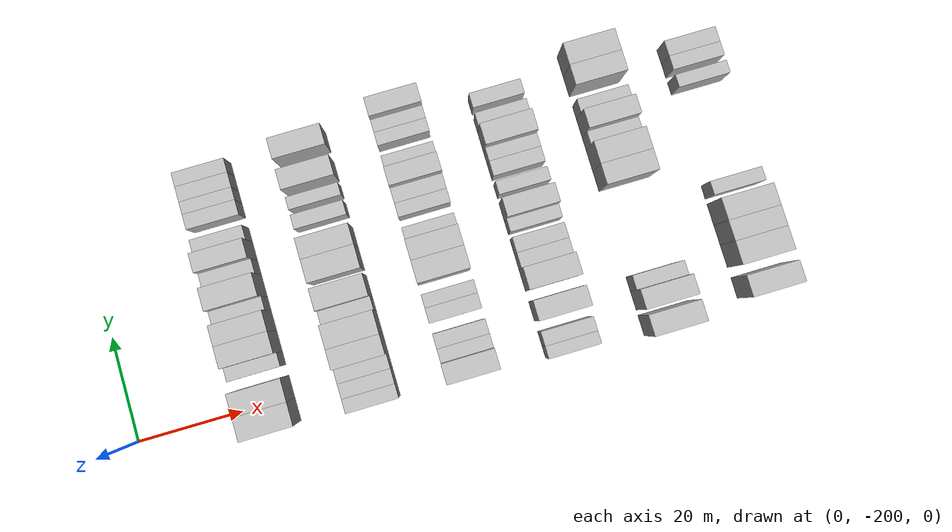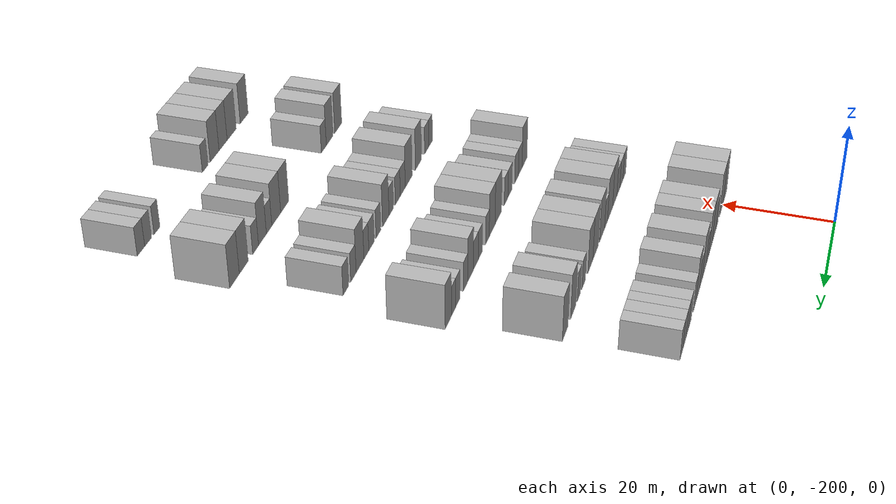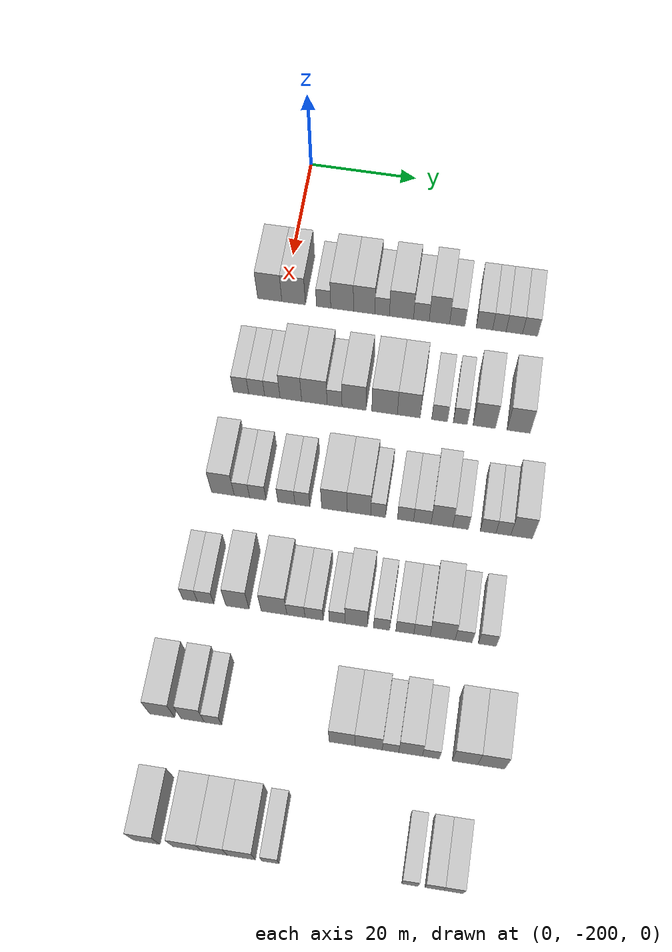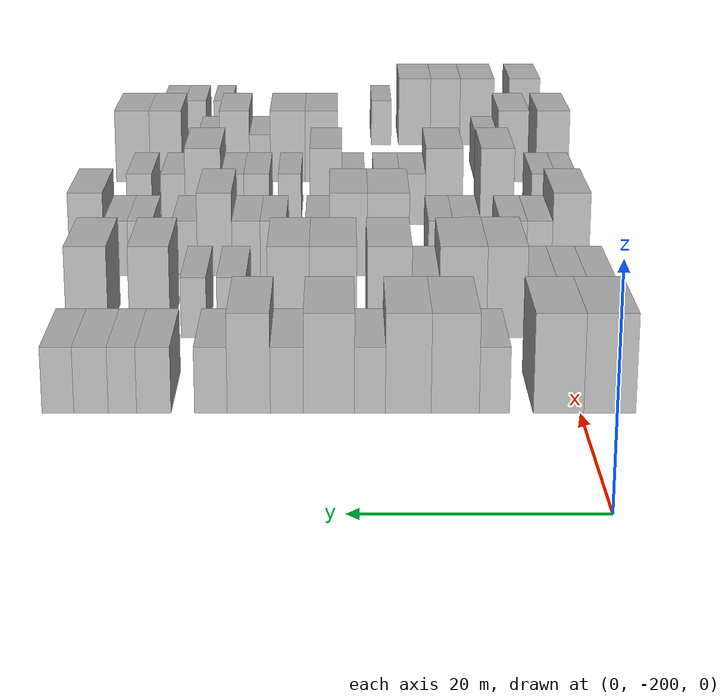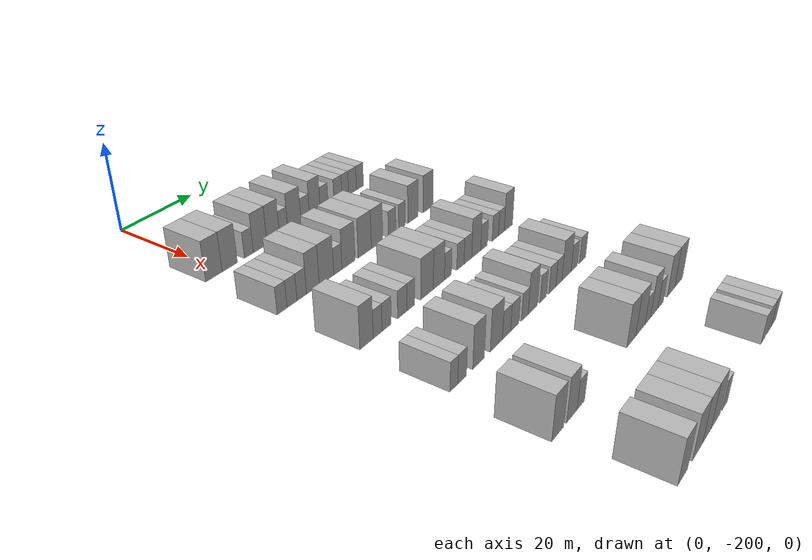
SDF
<sdf version="1.6">
 <world name="default">
  <model name="building_39">
   <static>1</static>
   <pose>25.0000 -202.5012 0 0.000000 0.000000 0.000000</pose>
   <link name="link">
    <pose>0 0 4.50 0 0 0</pose>
    <collision name="collision"><geometry><box><size>10.0000 4.4254 9.0000</size></box></geometry></collision>
    <visual name="visual">
     <cast_shadows>0</cast_shadows>
     <geometry><box><size>10.0000 4.4254 9.0000</size></box></geometry>
     <material>
      <script>
       <uri>model://HANNAS_wall/materials/scripts</uri>
       <uri>model://HANNAS_wall/materials/textures</uri>
       <name>vrc/HANNAS_wall</name>
      </script>
     </material>
    </visual>
   </link>
  </model>
  <model name="building_40">
   <static>1</static>
   <pose>25.0000 -198.1406 0 0.000000 0.000000 0.000000</pose>
   <link name="link">
    <pose>0 0 4.50 0 0 0</pose>
    <collision name="collision"><geometry><box><size>10.0000 4.2957 9.0000</size></box></geometry></collision>
    <visual name="visual">
     <cast_shadows>0</cast_shadows>
     <geometry><box><size>10.0000 4.2957 9.0000</size></box></geometry>
     <material>
      <script>
       <uri>model://HANNAS_wall/materials/scripts</uri>
       <uri>model://HANNAS_wall/materials/textures</uri>
       <name>vrc/HANNAS_wall</name>
      </script>
     </material>
    </visual>
   </link>
  </model>
  <model name="building_41">
   <static>1</static>
   <pose>25.0000 -192.6951 0 0.000000 0.000000 0.000000</pose>
   <link name="link">
    <pose>0 0 3.00 0 0 0</pose>
    <collision name="collision"><geometry><box><size>10.0000 2.5954 6.0000</size></box></geometry></collision>
    <visual name="visual">
     <cast_shadows>0</cast_shadows>
     <geometry><box><size>10.0000 2.5954 6.0000</size></box></geometry>
     <material>
      <script>
       <uri>model://HANNAS_wall/materials/scripts</uri>
       <uri>model://HANNAS_wall/materials/textures</uri>
       <name>vrc/HANNAS_wall</name>
      </script>
     </material>
    </visual>
   </link>
  </model>
  <model name="building_42">
   <static>1</static>
   <pose>25.0000 -189.3510 0 0.000000 0.000000 0.000000</pose>
   <link name="link">
    <pose>0 0 4.50 0 0 0</pose>
    <collision name="collision"><geometry><box><size>10.0000 4.0927 9.0000</size></box></geometry></collision>
    <visual name="visual">
     <cast_shadows>0</cast_shadows>
     <geometry><box><size>10.0000 4.0927 9.0000</size></box></geometry>
     <material>
      <script>
       <uri>model://HANNAS_wall/materials/scripts</uri>
       <uri>model://HANNAS_wall/materials/textures</uri>
       <name>vrc/HANNAS_wall</name>
      </script>
     </material>
    </visual>
   </link>
  </model>
  <model name="building_43">
   <static>1</static>
   <pose>25.0000 -185.3613 0 0.000000 0.000000 0.000000</pose>
   <link name="link">
    <pose>0 0 4.50 0 0 0</pose>
    <collision name="collision"><geometry><box><size>10.0000 3.8867 9.0000</size></box></geometry></collision>
    <visual name="visual">
     <cast_shadows>0</cast_shadows>
     <geometry><box><size>10.0000 3.8867 9.0000</size></box></geometry>
     <material>
      <script>
       <uri>model://HANNAS_wall/materials/scripts</uri>
       <uri>model://HANNAS_wall/materials/textures</uri>
       <name>vrc/HANNAS_wall</name>
      </script>
     </material>
    </visual>
   </link>
  </model>
  <model name="building_44">
   <static>1</static>
   <pose>25.0000 -182.1050 0 0.000000 0.000000 0.000000</pose>
   <link name="link">
    <pose>0 0 3.00 0 0 0</pose>
    <collision name="collision"><geometry><box><size>10.0000 2.6259 6.0000</size></box></geometry></collision>
    <visual name="visual">
     <cast_shadows>0</cast_shadows>
     <geometry><box><size>10.0000 2.6259 6.0000</size></box></geometry>
     <material>
      <script>
       <uri>model://HANNAS_wall/materials/scripts</uri>
       <uri>model://HANNAS_wall/materials/textures</uri>
       <name>vrc/HANNAS_wall</name>
      </script>
     </material>
    </visual>
   </link>
  </model>
  <model name="building_45">
   <static>1</static>
   <pose>25.0000 -178.6218 0 0.000000 0.000000 0.000000</pose>
   <link name="link">
    <pose>0 0 4.50 0 0 0</pose>
    <collision name="collision"><geometry><box><size>10.0000 4.3404 9.0000</size></box></geometry></collision>
    <visual name="visual">
     <cast_shadows>0</cast_shadows>
     <geometry><box><size>10.0000 4.3404 9.0000</size></box></geometry>
     <material>
      <script>
       <uri>model://HANNAS_wall/materials/scripts</uri>
       <uri>model://HANNAS_wall/materials/textures</uri>
       <name>vrc/HANNAS_wall</name>
      </script>
     </material>
    </visual>
   </link>
  </model>
  <model name="building_46">
   <static>1</static>
   <pose>25.0000 -175.0404 0 0.000000 0.000000 0.000000</pose>
   <link name="link">
    <pose>0 0 3.00 0 0 0</pose>
    <collision name="collision"><geometry><box><size>10.0000 2.8225 6.0000</size></box></geometry></collision>
    <visual name="visual">
     <cast_shadows>0</cast_shadows>
     <geometry><box><size>10.0000 2.8225 6.0000</size></box></geometry>
     <material>
      <script>
       <uri>model://HANNAS_wall/materials/scripts</uri>
       <uri>model://HANNAS_wall/materials/textures</uri>
       <name>vrc/HANNAS_wall</name>
      </script>
     </material>
    </visual>
   </link>
  </model>
  <model name="building_47">
   <static>1</static>
   <pose>25.0000 -171.7999 0 0.000000 0.000000 0.000000</pose>
   <link name="link">
    <pose>0 0 4.50 0 0 0</pose>
    <collision name="collision"><geometry><box><size>10.0000 3.6585 9.0000</size></box></geometry></collision>
    <visual name="visual">
     <cast_shadows>0</cast_shadows>
     <geometry><box><size>10.0000 3.6585 9.0000</size></box></geometry>
     <material>
      <script>
       <uri>model://HANNAS_wall/materials/scripts</uri>
       <uri>model://HANNAS_wall/materials/textures</uri>
       <name>vrc/HANNAS_wall</name>
      </script>
     </material>
    </visual>
   </link>
  </model>
  <model name="building_48">
   <static>1</static>
   <pose>25.0000 -168.5808 0 0.000000 0.000000 0.000000</pose>
   <link name="link">
    <pose>0 0 3.00 0 0 0</pose>
    <collision name="collision"><geometry><box><size>10.0000 2.7797 6.0000</size></box></geometry></collision>
    <visual name="visual">
     <cast_shadows>0</cast_shadows>
     <geometry><box><size>10.0000 2.7797 6.0000</size></box></geometry>
     <material>
      <script>
       <uri>model://HANNAS_wall/materials/scripts</uri>
       <uri>model://HANNAS_wall/materials/textures</uri>
       <name>vrc/HANNAS_wall</name>
      </script>
     </material>
    </visual>
   </link>
  </model>
  <model name="building_49">
   <static>1</static>
   <pose>25.0000 -163.7289 0 0.000000 0.000000 0.000000</pose>
   <link name="link">
    <pose>0 0 3.00 0 0 0</pose>
    <collision name="collision"><geometry><box><size>10.0000 2.9242 6.0000</size></box></geometry></collision>
    <visual name="visual">
     <cast_shadows>0</cast_shadows>
     <geometry><box><size>10.0000 2.9242 6.0000</size></box></geometry>
     <material>
      <script>
       <uri>model://HANNAS_wall/materials/scripts</uri>
       <uri>model://HANNAS_wall/materials/textures</uri>
       <name>vrc/HANNAS_wall</name>
      </script>
     </material>
    </visual>
   </link>
  </model>
  <model name="building_50">
   <static>1</static>
   <pose>25.0000 -161.0597 0 0.000000 0.000000 0.000000</pose>
   <link name="link">
    <pose>0 0 3.00 0 0 0</pose>
    <collision name="collision"><geometry><box><size>10.0000 2.4142 6.0000</size></box></geometry></collision>
    <visual name="visual">
     <cast_shadows>0</cast_shadows>
     <geometry><box><size>10.0000 2.4142 6.0000</size></box></geometry>
     <material>
      <script>
       <uri>model://HANNAS_wall/materials/scripts</uri>
       <uri>model://HANNAS_wall/materials/textures</uri>
       <name>vrc/HANNAS_wall</name>
      </script>
     </material>
    </visual>
   </link>
  </model>
  <model name="building_51">
   <static>1</static>
   <pose>25.0000 -158.3881 0 0.000000 0.000000 0.000000</pose>
   <link name="link">
    <pose>0 0 3.00 0 0 0</pose>
    <collision name="collision"><geometry><box><size>10.0000 2.9291 6.0000</size></box></geometry></collision>
    <visual name="visual">
     <cast_shadows>0</cast_shadows>
     <geometry><box><size>10.0000 2.9291 6.0000</size></box></geometry>
     <material>
      <script>
       <uri>model://HANNAS_wall/materials/scripts</uri>
       <uri>model://HANNAS_wall/materials/textures</uri>
       <name>vrc/HANNAS_wall</name>
      </script>
     </material>
    </visual>
   </link>
  </model>
  <model name="building_52">
   <static>1</static>
   <pose>25.0000 -155.5649 0 0.000000 0.000000 0.000000</pose>
   <link name="link">
    <pose>0 0 3.00 0 0 0</pose>
    <collision name="collision"><geometry><box><size>10.0000 2.7174 6.0000</size></box></geometry></collision>
    <visual name="visual">
     <cast_shadows>0</cast_shadows>
     <geometry><box><size>10.0000 2.7174 6.0000</size></box></geometry>
     <material>
      <script>
       <uri>model://HANNAS_wall/materials/scripts</uri>
       <uri>model://HANNAS_wall/materials/textures</uri>
       <name>vrc/HANNAS_wall</name>
      </script>
     </material>
    </visual>
   </link>
  </model>
  <model name="building_205">
   <static>1</static>
   <pose>44.0000 -204.1090 0 0.000000 0.000000 0.000000</pose>
   <link name="link">
    <pose>0 0 3.00 0 0 0</pose>
    <collision name="collision"><geometry><box><size>10.0000 2.7121 6.0000</size></box></geometry></collision>
    <visual name="visual">
     <cast_shadows>0</cast_shadows>
     <geometry><box><size>10.0000 2.7121 6.0000</size></box></geometry>
     <material>
      <script>
       <uri>model://HANNAS_wall/materials/scripts</uri>
       <uri>model://HANNAS_wall/materials/textures</uri>
       <name>vrc/HANNAS_wall</name>
      </script>
     </material>
    </visual>
   </link>
  </model>
  <model name="building_206">
   <static>1</static>
   <pose>44.0000 -201.3451 0 0.000000 0.000000 0.000000</pose>
   <link name="link">
    <pose>0 0 3.00 0 0 0</pose>
    <collision name="collision"><geometry><box><size>10.0000 2.8157 6.0000</size></box></geometry></collision>
    <visual name="visual">
     <cast_shadows>0</cast_shadows>
     <geometry><box><size>10.0000 2.8157 6.0000</size></box></geometry>
     <material>
      <script>
       <uri>model://HANNAS_wall/materials/scripts</uri>
       <uri>model://HANNAS_wall/materials/textures</uri>
       <name>vrc/HANNAS_wall</name>
      </script>
     </material>
    </visual>
   </link>
  </model>
  <model name="building_207">
   <static>1</static>
   <pose>44.0000 -198.5824 0 0.000000 0.000000 0.000000</pose>
   <link name="link">
    <pose>0 0 3.00 0 0 0</pose>
    <collision name="collision"><geometry><box><size>10.0000 2.7096 6.0000</size></box></geometry></collision>
    <visual name="visual">
     <cast_shadows>0</cast_shadows>
     <geometry><box><size>10.0000 2.7096 6.0000</size></box></geometry>
     <material>
      <script>
       <uri>model://HANNAS_wall/materials/scripts</uri>
       <uri>model://HANNAS_wall/materials/textures</uri>
       <name>vrc/HANNAS_wall</name>
      </script>
     </material>
    </visual>
   </link>
  </model>
  <model name="building_208">
   <static>1</static>
   <pose>44.0000 -195.3236 0 0.000000 0.000000 0.000000</pose>
   <link name="link">
    <pose>0 0 4.50 0 0 0</pose>
    <collision name="collision"><geometry><box><size>10.0000 3.8080 9.0000</size></box></geometry></collision>
    <visual name="visual">
     <cast_shadows>0</cast_shadows>
     <geometry><box><size>10.0000 3.8080 9.0000</size></box></geometry>
     <material>
      <script>
       <uri>model://HANNAS_wall/materials/scripts</uri>
       <uri>model://HANNAS_wall/materials/textures</uri>
       <name>vrc/HANNAS_wall</name>
      </script>
     </material>
    </visual>
   </link>
  </model>
  <model name="building_209">
   <static>1</static>
   <pose>44.0000 -191.1843 0 0.000000 0.000000 0.000000</pose>
   <link name="link">
    <pose>0 0 4.50 0 0 0</pose>
    <collision name="collision"><geometry><box><size>10.0000 4.4705 9.0000</size></box></geometry></collision>
    <visual name="visual">
     <cast_shadows>0</cast_shadows>
     <geometry><box><size>10.0000 4.4705 9.0000</size></box></geometry>
     <material>
      <script>
       <uri>model://HANNAS_wall/materials/scripts</uri>
       <uri>model://HANNAS_wall/materials/textures</uri>
       <name>vrc/HANNAS_wall</name>
      </script>
     </material>
    </visual>
   </link>
  </model>
  <model name="building_210">
   <static>1</static>
   <pose>44.0000 -187.6469 0 0.000000 0.000000 0.000000</pose>
   <link name="link">
    <pose>0 0 3.00 0 0 0</pose>
    <collision name="collision"><geometry><box><size>10.0000 2.6042 6.0000</size></box></geometry></collision>
    <visual name="visual">
     <cast_shadows>0</cast_shadows>
     <geometry><box><size>10.0000 2.6042 6.0000</size></box></geometry>
     <material>
      <script>
       <uri>model://HANNAS_wall/materials/scripts</uri>
       <uri>model://HANNAS_wall/materials/textures</uri>
       <name>vrc/HANNAS_wall</name>
      </script>
     </material>
    </visual>
   </link>
  </model>
  <model name="building_211">
   <static>1</static>
   <pose>44.0000 -184.2383 0 0.000000 0.000000 0.000000</pose>
   <link name="link">
    <pose>0 0 4.50 0 0 0</pose>
    <collision name="collision"><geometry><box><size>10.0000 4.2131 9.0000</size></box></geometry></collision>
    <visual name="visual">
     <cast_shadows>0</cast_shadows>
     <geometry><box><size>10.0000 4.2131 9.0000</size></box></geometry>
     <material>
      <script>
       <uri>model://HANNAS_wall/materials/scripts</uri>
       <uri>model://HANNAS_wall/materials/textures</uri>
       <name>vrc/HANNAS_wall</name>
      </script>
     </material>
    </visual>
   </link>
  </model>
  <model name="building_212">
   <static>1</static>
   <pose>44.0000 -178.9021 0 0.000000 0.000000 0.000000</pose>
   <link name="link">
    <pose>0 0 4.50 0 0 0</pose>
    <collision name="collision"><geometry><box><size>10.0000 4.4593 9.0000</size></box></geometry></collision>
    <visual name="visual">
     <cast_shadows>0</cast_shadows>
     <geometry><box><size>10.0000 4.4593 9.0000</size></box></geometry>
     <material>
      <script>
       <uri>model://HANNAS_wall/materials/scripts</uri>
       <uri>model://HANNAS_wall/materials/textures</uri>
       <name>vrc/HANNAS_wall</name>
      </script>
     </material>
    </visual>
   </link>
  </model>
  <model name="building_213">
   <static>1</static>
   <pose>44.0000 -174.6859 0 0.000000 0.000000 0.000000</pose>
   <link name="link">
    <pose>0 0 4.50 0 0 0</pose>
    <collision name="collision"><geometry><box><size>10.0000 3.9730 9.0000</size></box></geometry></collision>
    <visual name="visual">
     <cast_shadows>0</cast_shadows>
     <geometry><box><size>10.0000 3.9730 9.0000</size></box></geometry>
     <material>
      <script>
       <uri>model://HANNAS_wall/materials/scripts</uri>
       <uri>model://HANNAS_wall/materials/textures</uri>
       <name>vrc/HANNAS_wall</name>
      </script>
     </material>
    </visual>
   </link>
  </model>
  <model name="building_214">
   <static>1</static>
   <pose>44.0000 -169.3188 0 0.000000 0.000000 0.000000</pose>
   <link name="link">
    <pose>0 0 3.00 0 0 0</pose>
    <collision name="collision"><geometry><box><size>10.0000 2.7613 6.0000</size></box></geometry></collision>
    <visual name="visual">
     <cast_shadows>0</cast_shadows>
     <geometry><box><size>10.0000 2.7613 6.0000</size></box></geometry>
     <material>
      <script>
       <uri>model://HANNAS_wall/materials/scripts</uri>
       <uri>model://HANNAS_wall/materials/textures</uri>
       <name>vrc/HANNAS_wall</name>
      </script>
     </material>
    </visual>
   </link>
  </model>
  <model name="building_215">
   <static>1</static>
   <pose>44.0000 -165.7244 0 0.000000 0.000000 0.000000</pose>
   <link name="link">
    <pose>0 0 3.00 0 0 0</pose>
    <collision name="collision"><geometry><box><size>10.0000 2.4276 6.0000</size></box></geometry></collision>
    <visual name="visual">
     <cast_shadows>0</cast_shadows>
     <geometry><box><size>10.0000 2.4276 6.0000</size></box></geometry>
     <material>
      <script>
       <uri>model://HANNAS_wall/materials/scripts</uri>
       <uri>model://HANNAS_wall/materials/textures</uri>
       <name>vrc/HANNAS_wall</name>
      </script>
     </material>
    </visual>
   </link>
  </model>
  <model name="building_216">
   <static>1</static>
   <pose>44.0000 -161.5761 0 0.000000 0.000000 0.000000</pose>
   <link name="link">
    <pose>0 0 4.50 0 0 0</pose>
    <collision name="collision"><geometry><box><size>10.0000 3.8690 9.0000</size></box></geometry></collision>
    <visual name="visual">
     <cast_shadows>0</cast_shadows>
     <geometry><box><size>10.0000 3.8690 9.0000</size></box></geometry>
     <material>
      <script>
       <uri>model://HANNAS_wall/materials/scripts</uri>
       <uri>model://HANNAS_wall/materials/textures</uri>
       <name>vrc/HANNAS_wall</name>
      </script>
     </material>
    </visual>
   </link>
  </model>
  <model name="building_217">
   <static>1</static>
   <pose>44.0000 -155.6484 0 0.000000 0.000000 0.000000</pose>
   <link name="link">
    <pose>0 0 4.50 0 0 0</pose>
    <collision name="collision"><geometry><box><size>10.0000 3.9863 9.0000</size></box></geometry></collision>
    <visual name="visual">
     <cast_shadows>0</cast_shadows>
     <geometry><box><size>10.0000 3.9863 9.0000</size></box></geometry>
     <material>
      <script>
       <uri>model://HANNAS_wall/materials/scripts</uri>
       <uri>model://HANNAS_wall/materials/textures</uri>
       <name>vrc/HANNAS_wall</name>
      </script>
     </material>
    </visual>
   </link>
  </model>
  <model name="building_380">
   <static>1</static>
   <pose>63.0000 -203.5718 0 0.000000 0.000000 0.000000</pose>
   <link name="link">
    <pose>0 0 4.50 0 0 0</pose>
    <collision name="collision"><geometry><box><size>10.0000 3.8693 9.0000</size></box></geometry></collision>
    <visual name="visual">
     <cast_shadows>0</cast_shadows>
     <geometry><box><size>10.0000 3.8693 9.0000</size></box></geometry>
     <material>
      <script>
       <uri>model://HANNAS_wall/materials/scripts</uri>
       <uri>model://HANNAS_wall/materials/textures</uri>
       <name>vrc/HANNAS_wall</name>
      </script>
     </material>
    </visual>
   </link>
  </model>
  <model name="building_381">
   <static>1</static>
   <pose>63.0000 -200.3205 0 0.000000 0.000000 0.000000</pose>
   <link name="link">
    <pose>0 0 3.00 0 0 0</pose>
    <collision name="collision"><geometry><box><size>10.0000 2.6334 6.0000</size></box></geometry></collision>
    <visual name="visual">
     <cast_shadows>0</cast_shadows>
     <geometry><box><size>10.0000 2.6334 6.0000</size></box></geometry>
     <material>
      <script>
       <uri>model://HANNAS_wall/materials/scripts</uri>
       <uri>model://HANNAS_wall/materials/textures</uri>
       <name>vrc/HANNAS_wall</name>
      </script>
     </material>
    </visual>
   </link>
  </model>
  <model name="building_382">
   <static>1</static>
   <pose>63.0000 -197.6042 0 0.000000 0.000000 0.000000</pose>
   <link name="link">
    <pose>0 0 3.00 0 0 0</pose>
    <collision name="collision"><geometry><box><size>10.0000 2.7992 6.0000</size></box></geometry></collision>
    <visual name="visual">
     <cast_shadows>0</cast_shadows>
     <geometry><box><size>10.0000 2.7992 6.0000</size></box></geometry>
     <material>
      <script>
       <uri>model://HANNAS_wall/materials/scripts</uri>
       <uri>model://HANNAS_wall/materials/textures</uri>
       <name>vrc/HANNAS_wall</name>
      </script>
     </material>
    </visual>
   </link>
  </model>
  <model name="building_383">
   <static>1</static>
   <pose>63.0000 -192.7460 0 0.000000 0.000000 0.000000</pose>
   <link name="link">
    <pose>0 0 3.00 0 0 0</pose>
    <collision name="collision"><geometry><box><size>10.0000 2.9170 6.0000</size></box></geometry></collision>
    <visual name="visual">
     <cast_shadows>0</cast_shadows>
     <geometry><box><size>10.0000 2.9170 6.0000</size></box></geometry>
     <material>
      <script>
       <uri>model://HANNAS_wall/materials/scripts</uri>
       <uri>model://HANNAS_wall/materials/textures</uri>
       <name>vrc/HANNAS_wall</name>
      </script>
     </material>
    </visual>
   </link>
  </model>
  <model name="building_384">
   <static>1</static>
   <pose>63.0000 -190.0220 0 0.000000 0.000000 0.000000</pose>
   <link name="link">
    <pose>0 0 3.00 0 0 0</pose>
    <collision name="collision"><geometry><box><size>10.0000 2.5311 6.0000</size></box></geometry></collision>
    <visual name="visual">
     <cast_shadows>0</cast_shadows>
     <geometry><box><size>10.0000 2.5311 6.0000</size></box></geometry>
     <material>
      <script>
       <uri>model://HANNAS_wall/materials/scripts</uri>
       <uri>model://HANNAS_wall/materials/textures</uri>
       <name>vrc/HANNAS_wall</name>
      </script>
     </material>
    </visual>
   </link>
  </model>
  <model name="building_385">
   <static>1</static>
   <pose>63.0000 -184.5924 0 0.000000 0.000000 0.000000</pose>
   <link name="link">
    <pose>0 0 4.50 0 0 0</pose>
    <collision name="collision"><geometry><box><size>10.0000 4.3280 9.0000</size></box></geometry></collision>
    <visual name="visual">
     <cast_shadows>0</cast_shadows>
     <geometry><box><size>10.0000 4.3280 9.0000</size></box></geometry>
     <material>
      <script>
       <uri>model://HANNAS_wall/materials/scripts</uri>
       <uri>model://HANNAS_wall/materials/textures</uri>
       <name>vrc/HANNAS_wall</name>
      </script>
     </material>
    </visual>
   </link>
  </model>
  <model name="building_386">
   <static>1</static>
   <pose>63.0000 -180.4423 0 0.000000 0.000000 0.000000</pose>
   <link name="link">
    <pose>0 0 4.50 0 0 0</pose>
    <collision name="collision"><geometry><box><size>10.0000 3.9723 9.0000</size></box></geometry></collision>
    <visual name="visual">
     <cast_shadows>0</cast_shadows>
     <geometry><box><size>10.0000 3.9723 9.0000</size></box></geometry>
     <material>
      <script>
       <uri>model://HANNAS_wall/materials/scripts</uri>
       <uri>model://HANNAS_wall/materials/textures</uri>
       <name>vrc/HANNAS_wall</name>
      </script>
     </material>
    </visual>
   </link>
  </model>
  <model name="building_387">
   <static>1</static>
   <pose>63.0000 -177.2137 0 0.000000 0.000000 0.000000</pose>
   <link name="link">
    <pose>0 0 3.00 0 0 0</pose>
    <collision name="collision"><geometry><box><size>10.0000 2.4849 6.0000</size></box></geometry></collision>
    <visual name="visual">
     <cast_shadows>0</cast_shadows>
     <geometry><box><size>10.0000 2.4849 6.0000</size></box></geometry>
     <material>
      <script>
       <uri>model://HANNAS_wall/materials/scripts</uri>
       <uri>model://HANNAS_wall/materials/textures</uri>
       <name>vrc/HANNAS_wall</name>
      </script>
     </material>
    </visual>
   </link>
  </model>
  <model name="building_388">
   <static>1</static>
   <pose>63.0000 -172.6171 0 0.000000 0.000000 0.000000</pose>
   <link name="link">
    <pose>0 0 3.00 0 0 0</pose>
    <collision name="collision"><geometry><box><size>10.0000 2.7084 6.0000</size></box></geometry></collision>
    <visual name="visual">
     <cast_shadows>0</cast_shadows>
     <geometry><box><size>10.0000 2.7084 6.0000</size></box></geometry>
     <material>
      <script>
       <uri>model://HANNAS_wall/materials/scripts</uri>
       <uri>model://HANNAS_wall/materials/textures</uri>
       <name>vrc/HANNAS_wall</name>
      </script>
     </material>
    </visual>
   </link>
  </model>
  <model name="building_389">
   <static>1</static>
   <pose>63.0000 -169.7926 0 0.000000 0.000000 0.000000</pose>
   <link name="link">
    <pose>0 0 3.00 0 0 0</pose>
    <collision name="collision"><geometry><box><size>10.0000 2.9404 6.0000</size></box></geometry></collision>
    <visual name="visual">
     <cast_shadows>0</cast_shadows>
     <geometry><box><size>10.0000 2.9404 6.0000</size></box></geometry>
     <material>
      <script>
       <uri>model://HANNAS_wall/materials/scripts</uri>
       <uri>model://HANNAS_wall/materials/textures</uri>
       <name>vrc/HANNAS_wall</name>
      </script>
     </material>
    </visual>
   </link>
  </model>
  <model name="building_390">
   <static>1</static>
   <pose>63.0000 -166.5151 0 0.000000 0.000000 0.000000</pose>
   <link name="link">
    <pose>0 0 4.50 0 0 0</pose>
    <collision name="collision"><geometry><box><size>10.0000 3.6146 9.0000</size></box></geometry></collision>
    <visual name="visual">
     <cast_shadows>0</cast_shadows>
     <geometry><box><size>10.0000 3.6146 9.0000</size></box></geometry>
     <material>
      <script>
       <uri>model://HANNAS_wall/materials/scripts</uri>
       <uri>model://HANNAS_wall/materials/textures</uri>
       <name>vrc/HANNAS_wall</name>
      </script>
     </material>
    </visual>
   </link>
  </model>
  <model name="building_391">
   <static>1</static>
   <pose>63.0000 -163.3926 0 0.000000 0.000000 0.000000</pose>
   <link name="link">
    <pose>0 0 3.00 0 0 0</pose>
    <collision name="collision"><geometry><box><size>10.0000 2.6303 6.0000</size></box></geometry></collision>
    <visual name="visual">
     <cast_shadows>0</cast_shadows>
     <geometry><box><size>10.0000 2.6303 6.0000</size></box></geometry>
     <material>
      <script>
       <uri>model://HANNAS_wall/materials/scripts</uri>
       <uri>model://HANNAS_wall/materials/textures</uri>
       <name>vrc/HANNAS_wall</name>
      </script>
     </material>
    </visual>
   </link>
  </model>
  <model name="building_392">
   <static>1</static>
   <pose>63.0000 -158.7782 0 0.000000 0.000000 0.000000</pose>
   <link name="link">
    <pose>0 0 3.00 0 0 0</pose>
    <collision name="collision"><geometry><box><size>10.0000 2.5986 6.0000</size></box></geometry></collision>
    <visual name="visual">
     <cast_shadows>0</cast_shadows>
     <geometry><box><size>10.0000 2.5986 6.0000</size></box></geometry>
     <material>
      <script>
       <uri>model://HANNAS_wall/materials/scripts</uri>
       <uri>model://HANNAS_wall/materials/textures</uri>
       <name>vrc/HANNAS_wall</name>
      </script>
     </material>
    </visual>
   </link>
  </model>
  <model name="building_393">
   <static>1</static>
   <pose>63.0000 -156.2447 0 0.000000 0.000000 0.000000</pose>
   <link name="link">
    <pose>0 0 3.00 0 0 0</pose>
    <collision name="collision"><geometry><box><size>10.0000 2.4684 6.0000</size></box></geometry></collision>
    <visual name="visual">
     <cast_shadows>0</cast_shadows>
     <geometry><box><size>10.0000 2.4684 6.0000</size></box></geometry>
     <material>
      <script>
       <uri>model://HANNAS_wall/materials/scripts</uri>
       <uri>model://HANNAS_wall/materials/textures</uri>
       <name>vrc/HANNAS_wall</name>
      </script>
     </material>
    </visual>
   </link>
  </model>
  <model name="building_394">
   <static>1</static>
   <pose>63.0000 -153.1979 0 0.000000 0.000000 0.000000</pose>
   <link name="link">
    <pose>0 0 4.50 0 0 0</pose>
    <collision name="collision"><geometry><box><size>10.0000 3.6252 9.0000</size></box></geometry></collision>
    <visual name="visual">
     <cast_shadows>0</cast_shadows>
     <geometry><box><size>10.0000 3.6252 9.0000</size></box></geometry>
     <material>
      <script>
       <uri>model://HANNAS_wall/materials/scripts</uri>
       <uri>model://HANNAS_wall/materials/textures</uri>
       <name>vrc/HANNAS_wall</name>
      </script>
     </material>
    </visual>
   </link>
  </model>
  <model name="building_551">
   <static>1</static>
   <pose>82.0000 -205.2498 0 0.000000 0.000000 0.000000</pose>
   <link name="link">
    <pose>0 0 3.00 0 0 0</pose>
    <collision name="collision"><geometry><box><size>10.0000 2.4044 6.0000</size></box></geometry></collision>
    <visual name="visual">
     <cast_shadows>0</cast_shadows>
     <geometry><box><size>10.0000 2.4044 6.0000</size></box></geometry>
     <material>
      <script>
       <uri>model://HANNAS_wall/materials/scripts</uri>
       <uri>model://HANNAS_wall/materials/textures</uri>
       <name>vrc/HANNAS_wall</name>
      </script>
     </material>
    </visual>
   </link>
  </model>
  <model name="building_552">
   <static>1</static>
   <pose>82.0000 -202.6896 0 0.000000 0.000000 0.000000</pose>
   <link name="link">
    <pose>0 0 3.00 0 0 0</pose>
    <collision name="collision"><geometry><box><size>10.0000 2.7161 6.0000</size></box></geometry></collision>
    <visual name="visual">
     <cast_shadows>0</cast_shadows>
     <geometry><box><size>10.0000 2.7161 6.0000</size></box></geometry>
     <material>
      <script>
       <uri>model://HANNAS_wall/materials/scripts</uri>
       <uri>model://HANNAS_wall/materials/textures</uri>
       <name>vrc/HANNAS_wall</name>
      </script>
     </material>
    </visual>
   </link>
  </model>
  <model name="building_553">
   <static>1</static>
   <pose>82.0000 -197.4261 0 0.000000 0.000000 0.000000</pose>
   <link name="link">
    <pose>0 0 4.50 0 0 0</pose>
    <collision name="collision"><geometry><box><size>10.0000 3.8108 9.0000</size></box></geometry></collision>
    <visual name="visual">
     <cast_shadows>0</cast_shadows>
     <geometry><box><size>10.0000 3.8108 9.0000</size></box></geometry>
     <material>
      <script>
       <uri>model://HANNAS_wall/materials/scripts</uri>
       <uri>model://HANNAS_wall/materials/textures</uri>
       <name>vrc/HANNAS_wall</name>
      </script>
     </material>
    </visual>
   </link>
  </model>
  <model name="building_554">
   <static>1</static>
   <pose>82.0000 -191.4086 0 0.000000 0.000000 0.000000</pose>
   <link name="link">
    <pose>0 0 4.50 0 0 0</pose>
    <collision name="collision"><geometry><box><size>10.0000 4.2242 9.0000</size></box></geometry></collision>
    <visual name="visual">
     <cast_shadows>0</cast_shadows>
     <geometry><box><size>10.0000 4.2242 9.0000</size></box></geometry>
     <material>
      <script>
       <uri>model://HANNAS_wall/materials/scripts</uri>
       <uri>model://HANNAS_wall/materials/textures</uri>
       <name>vrc/HANNAS_wall</name>
      </script>
     </material>
    </visual>
   </link>
  </model>
  <model name="building_555">
   <static>1</static>
   <pose>82.0000 -187.8111 0 0.000000 0.000000 0.000000</pose>
   <link name="link">
    <pose>0 0 3.00 0 0 0</pose>
    <collision name="collision"><geometry><box><size>10.0000 2.9708 6.0000</size></box></geometry></collision>
    <visual name="visual">
     <cast_shadows>0</cast_shadows>
     <geometry><box><size>10.0000 2.9708 6.0000</size></box></geometry>
     <material>
      <script>
       <uri>model://HANNAS_wall/materials/scripts</uri>
       <uri>model://HANNAS_wall/materials/textures</uri>
       <name>vrc/HANNAS_wall</name>
      </script>
     </material>
    </visual>
   </link>
  </model>
  <model name="building_556">
   <static>1</static>
   <pose>82.0000 -184.8534 0 0.000000 0.000000 0.000000</pose>
   <link name="link">
    <pose>0 0 3.00 0 0 0</pose>
    <collision name="collision"><geometry><box><size>10.0000 2.9445 6.0000</size></box></geometry></collision>
    <visual name="visual">
     <cast_shadows>0</cast_shadows>
     <geometry><box><size>10.0000 2.9445 6.0000</size></box></geometry>
     <material>
      <script>
       <uri>model://HANNAS_wall/materials/scripts</uri>
       <uri>model://HANNAS_wall/materials/textures</uri>
       <name>vrc/HANNAS_wall</name>
      </script>
     </material>
    </visual>
   </link>
  </model>
  <model name="building_557">
   <static>1</static>
   <pose>82.0000 -181.0954 0 0.000000 0.000000 0.000000</pose>
   <link name="link">
    <pose>0 0 3.00 0 0 0</pose>
    <collision name="collision"><geometry><box><size>10.0000 2.5715 6.0000</size></box></geometry></collision>
    <visual name="visual">
     <cast_shadows>0</cast_shadows>
     <geometry><box><size>10.0000 2.5715 6.0000</size></box></geometry>
     <material>
      <script>
       <uri>model://HANNAS_wall/materials/scripts</uri>
       <uri>model://HANNAS_wall/materials/textures</uri>
       <name>vrc/HANNAS_wall</name>
      </script>
     </material>
    </visual>
   </link>
  </model>
  <model name="building_558">
   <static>1</static>
   <pose>82.0000 -177.9817 0 0.000000 0.000000 0.000000</pose>
   <link name="link">
    <pose>0 0 4.50 0 0 0</pose>
    <collision name="collision"><geometry><box><size>10.0000 3.6559 9.0000</size></box></geometry></collision>
    <visual name="visual">
     <cast_shadows>0</cast_shadows>
     <geometry><box><size>10.0000 3.6559 9.0000</size></box></geometry>
     <material>
      <script>
       <uri>model://HANNAS_wall/materials/scripts</uri>
       <uri>model://HANNAS_wall/materials/textures</uri>
       <name>vrc/HANNAS_wall</name>
      </script>
     </material>
    </visual>
   </link>
  </model>
  <model name="building_559">
   <static>1</static>
   <pose>82.0000 -173.8535 0 0.000000 0.000000 0.000000</pose>
   <link name="link">
    <pose>0 0 3.00 0 0 0</pose>
    <collision name="collision"><geometry><box><size>10.0000 2.6007 6.0000</size></box></geometry></collision>
    <visual name="visual">
     <cast_shadows>0</cast_shadows>
     <geometry><box><size>10.0000 2.6007 6.0000</size></box></geometry>
     <material>
      <script>
       <uri>model://HANNAS_wall/materials/scripts</uri>
       <uri>model://HANNAS_wall/materials/textures</uri>
       <name>vrc/HANNAS_wall</name>
      </script>
     </material>
    </visual>
   </link>
  </model>
  <model name="building_560">
   <static>1</static>
   <pose>82.0000 -170.0890 0 0.000000 0.000000 0.000000</pose>
   <link name="link">
    <pose>0 0 3.00 0 0 0</pose>
    <collision name="collision"><geometry><box><size>10.0000 2.9282 6.0000</size></box></geometry></collision>
    <visual name="visual">
     <cast_shadows>0</cast_shadows>
     <geometry><box><size>10.0000 2.9282 6.0000</size></box></geometry>
     <material>
      <script>
       <uri>model://HANNAS_wall/materials/scripts</uri>
       <uri>model://HANNAS_wall/materials/textures</uri>
       <name>vrc/HANNAS_wall</name>
      </script>
     </material>
    </visual>
   </link>
  </model>
  <model name="building_561">
   <static>1</static>
   <pose>82.0000 -167.3298 0 0.000000 0.000000 0.000000</pose>
   <link name="link">
    <pose>0 0 3.00 0 0 0</pose>
    <collision name="collision"><geometry><box><size>10.0000 2.5904 6.0000</size></box></geometry></collision>
    <visual name="visual">
     <cast_shadows>0</cast_shadows>
     <geometry><box><size>10.0000 2.5904 6.0000</size></box></geometry>
     <material>
      <script>
       <uri>model://HANNAS_wall/materials/scripts</uri>
       <uri>model://HANNAS_wall/materials/textures</uri>
       <name>vrc/HANNAS_wall</name>
      </script>
     </material>
    </visual>
   </link>
  </model>
  <model name="building_562">
   <static>1</static>
   <pose>82.0000 -163.9995 0 0.000000 0.000000 0.000000</pose>
   <link name="link">
    <pose>0 0 4.50 0 0 0</pose>
    <collision name="collision"><geometry><box><size>10.0000 4.0701 9.0000</size></box></geometry></collision>
    <visual name="visual">
     <cast_shadows>0</cast_shadows>
     <geometry><box><size>10.0000 4.0701 9.0000</size></box></geometry>
     <material>
      <script>
       <uri>model://HANNAS_wall/materials/scripts</uri>
       <uri>model://HANNAS_wall/materials/textures</uri>
       <name>vrc/HANNAS_wall</name>
      </script>
     </material>
    </visual>
   </link>
  </model>
  <model name="building_563">
   <static>1</static>
   <pose>82.0000 -160.5838 0 0.000000 0.000000 0.000000</pose>
   <link name="link">
    <pose>0 0 3.00 0 0 0</pose>
    <collision name="collision"><geometry><box><size>10.0000 2.7613 6.0000</size></box></geometry></collision>
    <visual name="visual">
     <cast_shadows>0</cast_shadows>
     <geometry><box><size>10.0000 2.7613 6.0000</size></box></geometry>
     <material>
      <script>
       <uri>model://HANNAS_wall/materials/scripts</uri>
       <uri>model://HANNAS_wall/materials/textures</uri>
       <name>vrc/HANNAS_wall</name>
      </script>
     </material>
    </visual>
   </link>
  </model>
  <model name="building_564">
   <static>1</static>
   <pose>82.0000 -156.7648 0 0.000000 0.000000 0.000000</pose>
   <link name="link">
    <pose>0 0 3.00 0 0 0</pose>
    <collision name="collision"><geometry><box><size>10.0000 2.8769 6.0000</size></box></geometry></collision>
    <visual name="visual">
     <cast_shadows>0</cast_shadows>
     <geometry><box><size>10.0000 2.8769 6.0000</size></box></geometry>
     <material>
      <script>
       <uri>model://HANNAS_wall/materials/scripts</uri>
       <uri>model://HANNAS_wall/materials/textures</uri>
       <name>vrc/HANNAS_wall</name>
      </script>
     </material>
    </visual>
   </link>
  </model>
  <model name="building_728">
   <static>1</static>
   <pose>101.0000 -205.7820 0 0.000000 0.000000 0.000000</pose>
   <link name="link">
    <pose>0 0 4.50 0 0 0</pose>
    <collision name="collision"><geometry><box><size>10.0000 4.0161 9.0000</size></box></geometry></collision>
    <visual name="visual">
     <cast_shadows>0</cast_shadows>
     <geometry><box><size>10.0000 4.0161 9.0000</size></box></geometry>
     <material>
      <script>
       <uri>model://HANNAS_wall/materials/scripts</uri>
       <uri>model://HANNAS_wall/materials/textures</uri>
       <name>vrc/HANNAS_wall</name>
      </script>
     </material>
    </visual>
   </link>
  </model>
  <model name="building_729">
   <static>1</static>
   <pose>101.0000 -200.8974 0 0.000000 0.000000 0.000000</pose>
   <link name="link">
    <pose>0 0 4.50 0 0 0</pose>
    <collision name="collision"><geometry><box><size>10.0000 3.7531 9.0000</size></box></geometry></collision>
    <visual name="visual">
     <cast_shadows>0</cast_shadows>
     <geometry><box><size>10.0000 3.7531 9.0000</size></box></geometry>
     <material>
      <script>
       <uri>model://HANNAS_wall/materials/scripts</uri>
       <uri>model://HANNAS_wall/materials/textures</uri>
       <name>vrc/HANNAS_wall</name>
      </script>
     </material>
    </visual>
   </link>
  </model>
  <model name="building_730">
   <static>1</static>
   <pose>101.0000 -197.6499 0 0.000000 0.000000 0.000000</pose>
   <link name="link">
    <pose>0 0 3.00 0 0 0</pose>
    <collision name="collision"><geometry><box><size>10.0000 2.7419 6.0000</size></box></geometry></collision>
    <visual name="visual">
     <cast_shadows>0</cast_shadows>
     <geometry><box><size>10.0000 2.7419 6.0000</size></box></geometry>
     <material>
      <script>
       <uri>model://HANNAS_wall/materials/scripts</uri>
       <uri>model://HANNAS_wall/materials/textures</uri>
       <name>vrc/HANNAS_wall</name>
      </script>
     </material>
    </visual>
   </link>
  </model>
  <model name="building_731">
   <static>1</static>
   <pose>101.0000 -177.2748 0 0.000000 0.000000 0.000000</pose>
   <link name="link">
    <pose>0 0 4.50 0 0 0</pose>
    <collision name="collision"><geometry><box><size>10.0000 4.0028 9.0000</size></box></geometry></collision>
    <visual name="visual">
     <cast_shadows>0</cast_shadows>
     <geometry><box><size>10.0000 4.0028 9.0000</size></box></geometry>
     <material>
      <script>
       <uri>model://HANNAS_wall/materials/scripts</uri>
       <uri>model://HANNAS_wall/materials/textures</uri>
       <name>vrc/HANNAS_wall</name>
      </script>
     </material>
    </visual>
   </link>
  </model>
  <model name="building_732">
   <static>1</static>
   <pose>101.0000 -173.1258 0 0.000000 0.000000 0.000000</pose>
   <link name="link">
    <pose>0 0 4.50 0 0 0</pose>
    <collision name="collision"><geometry><box><size>10.0000 4.2953 9.0000</size></box></geometry></collision>
    <visual name="visual">
     <cast_shadows>0</cast_shadows>
     <geometry><box><size>10.0000 4.2953 9.0000</size></box></geometry>
     <material>
      <script>
       <uri>model://HANNAS_wall/materials/scripts</uri>
       <uri>model://HANNAS_wall/materials/textures</uri>
       <name>vrc/HANNAS_wall</name>
      </script>
     </material>
    </visual>
   </link>
  </model>
  <model name="building_733">
   <static>1</static>
   <pose>101.0000 -169.6943 0 0.000000 0.000000 0.000000</pose>
   <link name="link">
    <pose>0 0 3.00 0 0 0</pose>
    <collision name="collision"><geometry><box><size>10.0000 2.5678 6.0000</size></box></geometry></collision>
    <visual name="visual">
     <cast_shadows>0</cast_shadows>
     <geometry><box><size>10.0000 2.5678 6.0000</size></box></geometry>
     <material>
      <script>
       <uri>model://HANNAS_wall/materials/scripts</uri>
       <uri>model://HANNAS_wall/materials/textures</uri>
       <name>vrc/HANNAS_wall</name>
      </script>
     </material>
    </visual>
   </link>
  </model>
  <model name="building_734">
   <static>1</static>
   <pose>101.0000 -166.5752 0 0.000000 0.000000 0.000000</pose>
   <link name="link">
    <pose>0 0 4.50 0 0 0</pose>
    <collision name="collision"><geometry><box><size>10.0000 3.6705 9.0000</size></box></geometry></collision>
    <visual name="visual">
     <cast_shadows>0</cast_shadows>
     <geometry><box><size>10.0000 3.6705 9.0000</size></box></geometry>
     <material>
      <script>
       <uri>model://HANNAS_wall/materials/scripts</uri>
       <uri>model://HANNAS_wall/materials/textures</uri>
       <name>vrc/HANNAS_wall</name>
      </script>
     </material>
    </visual>
   </link>
  </model>
  <model name="building_735">
   <static>1</static>
   <pose>101.0000 -163.4053 0 0.000000 0.000000 0.000000</pose>
   <link name="link">
    <pose>0 0 3.00 0 0 0</pose>
    <collision name="collision"><geometry><box><size>10.0000 2.6693 6.0000</size></box></geometry></collision>
    <visual name="visual">
     <cast_shadows>0</cast_shadows>
     <geometry><box><size>10.0000 2.6693 6.0000</size></box></geometry>
     <material>
      <script>
       <uri>model://HANNAS_wall/materials/scripts</uri>
       <uri>model://HANNAS_wall/materials/textures</uri>
       <name>vrc/HANNAS_wall</name>
      </script>
     </material>
    </visual>
   </link>
  </model>
  <model name="building_736">
   <static>1</static>
   <pose>101.0000 -158.0943 0 0.000000 0.000000 0.000000</pose>
   <link name="link">
    <pose>0 0 4.50 0 0 0</pose>
    <collision name="collision"><geometry><box><size>10.0000 3.9526 9.0000</size></box></geometry></collision>
    <visual name="visual">
     <cast_shadows>0</cast_shadows>
     <geometry><box><size>10.0000 3.9526 9.0000</size></box></geometry>
     <material>
      <script>
       <uri>model://HANNAS_wall/materials/scripts</uri>
       <uri>model://HANNAS_wall/materials/textures</uri>
       <name>vrc/HANNAS_wall</name>
      </script>
     </material>
    </visual>
   </link>
  </model>
  <model name="building_737">
   <static>1</static>
   <pose>101.0000 -154.0114 0 0.000000 0.000000 0.000000</pose>
   <link name="link">
    <pose>0 0 4.50 0 0 0</pose>
    <collision name="collision"><geometry><box><size>10.0000 4.2133 9.0000</size></box></geometry></collision>
    <visual name="visual">
     <cast_shadows>0</cast_shadows>
     <geometry><box><size>10.0000 4.2133 9.0000</size></box></geometry>
     <material>
      <script>
       <uri>model://HANNAS_wall/materials/scripts</uri>
       <uri>model://HANNAS_wall/materials/textures</uri>
       <name>vrc/HANNAS_wall</name>
      </script>
     </material>
    </visual>
   </link>
  </model>
  <model name="building_907">
   <static>1</static>
   <pose>120.0000 -204.0200 0 0.000000 0.000000 0.000000</pose>
   <link name="link">
    <pose>0 0 4.50 0 0 0</pose>
    <collision name="collision"><geometry><box><size>10.0000 4.0510 9.0000</size></box></geometry></collision>
    <visual name="visual">
     <cast_shadows>0</cast_shadows>
     <geometry><box><size>10.0000 4.0510 9.0000</size></box></geometry>
     <material>
      <script>
       <uri>model://HANNAS_wall/materials/scripts</uri>
       <uri>model://HANNAS_wall/materials/textures</uri>
       <name>vrc/HANNAS_wall</name>
      </script>
     </material>
    </visual>
   </link>
  </model>
  <model name="building_908">
   <static>1</static>
   <pose>120.0000 -197.7570 0 0.000000 0.000000 0.000000</pose>
   <link name="link">
    <pose>0 0 4.50 0 0 0</pose>
    <collision name="collision"><geometry><box><size>10.0000 4.4749 9.0000</size></box></geometry></collision>
    <visual name="visual">
     <cast_shadows>0</cast_shadows>
     <geometry><box><size>10.0000 4.4749 9.0000</size></box></geometry>
     <material>
      <script>
       <uri>model://HANNAS_wall/materials/scripts</uri>
       <uri>model://HANNAS_wall/materials/textures</uri>
       <name>vrc/HANNAS_wall</name>
      </script>
     </material>
    </visual>
   </link>
  </model>
  <model name="building_909">
   <static>1</static>
   <pose>120.0000 -193.5668 0 0.000000 0.000000 0.000000</pose>
   <link name="link">
    <pose>0 0 4.50 0 0 0</pose>
    <collision name="collision"><geometry><box><size>10.0000 3.9055 9.0000</size></box></geometry></collision>
    <visual name="visual">
     <cast_shadows>0</cast_shadows>
     <geometry><box><size>10.0000 3.9055 9.0000</size></box></geometry>
     <material>
      <script>
       <uri>model://HANNAS_wall/materials/scripts</uri>
       <uri>model://HANNAS_wall/materials/textures</uri>
       <name>vrc/HANNAS_wall</name>
      </script>
     </material>
    </visual>
   </link>
  </model>
  <model name="building_910">
   <static>1</static>
   <pose>120.0000 -189.5027 0 0.000000 0.000000 0.000000</pose>
   <link name="link">
    <pose>0 0 4.50 0 0 0</pose>
    <collision name="collision"><geometry><box><size>10.0000 4.2227 9.0000</size></box></geometry></collision>
    <visual name="visual">
     <cast_shadows>0</cast_shadows>
     <geometry><box><size>10.0000 4.2227 9.0000</size></box></geometry>
     <material>
      <script>
       <uri>model://HANNAS_wall/materials/scripts</uri>
       <uri>model://HANNAS_wall/materials/textures</uri>
       <name>vrc/HANNAS_wall</name>
      </script>
     </material>
    </visual>
   </link>
  </model>
  <model name="building_911">
   <static>1</static>
   <pose>120.0000 -185.0763 0 0.000000 0.000000 0.000000</pose>
   <link name="link">
    <pose>0 0 3.00 0 0 0</pose>
    <collision name="collision"><geometry><box><size>10.0000 2.6300 6.0000</size></box></geometry></collision>
    <visual name="visual">
     <cast_shadows>0</cast_shadows>
     <geometry><box><size>10.0000 2.6300 6.0000</size></box></geometry>
     <material>
      <script>
       <uri>model://HANNAS_wall/materials/scripts</uri>
       <uri>model://HANNAS_wall/materials/textures</uri>
       <name>vrc/HANNAS_wall</name>
      </script>
     </material>
    </visual>
   </link>
  </model>
  <model name="building_912">
   <static>1</static>
   <pose>120.0000 -164.0420 0 0.000000 0.000000 0.000000</pose>
   <link name="link">
    <pose>0 0 3.00 0 0 0</pose>
    <collision name="collision"><geometry><box><size>10.0000 2.4795 6.0000</size></box></geometry></collision>
    <visual name="visual">
     <cast_shadows>0</cast_shadows>
     <geometry><box><size>10.0000 2.4795 6.0000</size></box></geometry>
     <material>
      <script>
       <uri>model://HANNAS_wall/materials/scripts</uri>
       <uri>model://HANNAS_wall/materials/textures</uri>
       <name>vrc/HANNAS_wall</name>
      </script>
     </material>
    </visual>
   </link>
  </model>
  <model name="building_913">
   <static>1</static>
   <pose>120.0000 -160.4241 0 0.000000 0.000000 0.000000</pose>
   <link name="link">
    <pose>0 0 3.00 0 0 0</pose>
    <collision name="collision"><geometry><box><size>10.0000 2.7563 6.0000</size></box></geometry></collision>
    <visual name="visual">
     <cast_shadows>0</cast_shadows>
     <geometry><box><size>10.0000 2.7563 6.0000</size></box></geometry>
     <material>
      <script>
       <uri>model://HANNAS_wall/materials/scripts</uri>
       <uri>model://HANNAS_wall/materials/textures</uri>
       <name>vrc/HANNAS_wall</name>
      </script>
     </material>
    </visual>
   </link>
  </model>
  <model name="building_914">
   <static>1</static>
   <pose>120.0000 -157.5542 0 0.000000 0.000000 0.000000</pose>
   <link name="link">
    <pose>0 0 3.00 0 0 0</pose>
    <collision name="collision"><geometry><box><size>10.0000 2.9835 6.0000</size></box></geometry></collision>
    <visual name="visual">
     <cast_shadows>0</cast_shadows>
     <geometry><box><size>10.0000 2.9835 6.0000</size></box></geometry>
     <material>
      <script>
       <uri>model://HANNAS_wall/materials/scripts</uri>
       <uri>model://HANNAS_wall/materials/textures</uri>
       <name>vrc/HANNAS_wall</name>
      </script>
     </material>
    </visual>
   </link>
  </model>
 </world>
</sdf>
